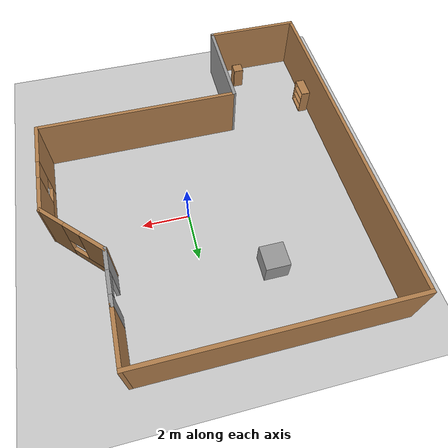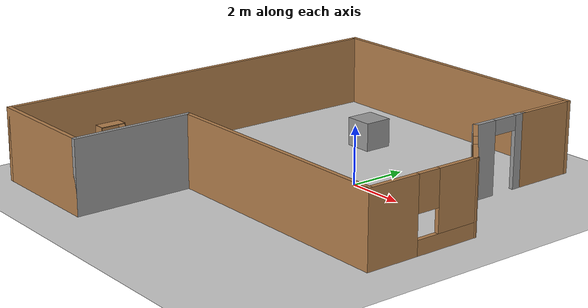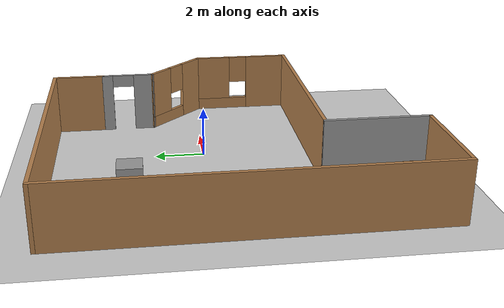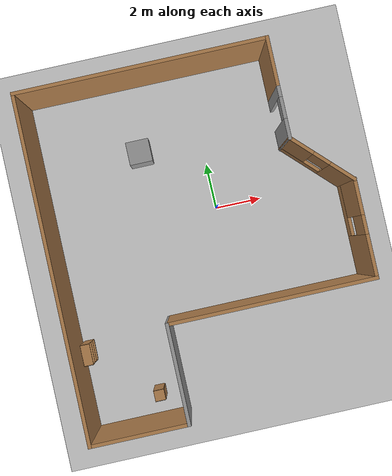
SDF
<sdf version="1.7">
 <world name="default">
  <light name="sun" type="directional">
   <pose>0 0 10 0 -0 0</pose>
   <diffuse>0.8 0.8 0.8 1</diffuse>
   <specular>0.2 0.2 0.2 1</specular>
   <attenuation>
    <range>1000</range>
    <constant>0.9</constant>
    <linear>0.01</linear>
    <quadratic>0.001</quadratic>
   </attenuation>
   <direction>-0.5 0.1 -0.9</direction>
   <spot><inner_angle>0</inner_angle><outer_angle>0</outer_angle><falloff>0</falloff></spot>
  </light>
  <model name="ground_plane">
   <static>1</static>
   <link name="link">
    <collision name="collision">
     <geometry><plane><normal>0 0 1</normal><size>100 100</size></plane></geometry>
     <surface><friction><ode><mu>100</mu><mu2>50</mu2></ode></friction></surface>
    </collision>
    <visual name="visual">
     <cast_shadows>0</cast_shadows>
     <geometry><plane><normal>0 0 1</normal><size>100 100</size></plane></geometry>
     <material>
      <script><uri>file://media/materials/scripts/gazebo.material</uri><name>Gazebo/Grey</name></script>
     </material>
    </visual>
   </link>
  </model>
  <gravity>0 0 -9.8</gravity>
  <magnetic_field>6e-06 2.3e-05 -4.2e-05</magnetic_field>
  <atmosphere type="adiabatic"/>
  <physics type="ode">
   <max_step_size>0.001</max_step_size>
   <real_time_factor>1</real_time_factor>
   <real_time_update_rate>1000</real_time_update_rate>
  </physics>
  <scene><ambient>0.4 0.4 0.4 1</ambient><background>0.7 0.7 0.7 1</background><shadows>1</shadows></scene>
  <audio><device>default</device></audio>
  <spherical_coordinates>
   <surface_model>EARTH_WGS84</surface_model>
   <latitude_deg>0</latitude_deg>
   <longitude_deg>0</longitude_deg>
   <elevation>0</elevation>
   <heading_deg>0</heading_deg>
  </spherical_coordinates>
  <model name="home">
   <pose>-0.794884 -1.13193 0 0 -0 0</pose>
   <link name="Wall_10">
    <collision name="Wall_10_Collision">
     <geometry><box><size>8.75 0.15 2.5</size></box></geometry>
     <pose>0 0 1.25 0 -0 0</pose>
    </collision>
    <visual name="Wall_10_Visual">
     <pose>0 0 1.25 0 -0 0</pose>
     <geometry><box><size>8.75 0.15 2.5</size></box></geometry>
     <material>
      <script><uri>file://media/materials/scripts/gazebo.material</uri><name>Gazebo/Wood</name></script>
      <ambient>1 1 1 1</ambient>
     </material>
     <meta><layer>0</layer></meta>
    </visual>
    <pose>2.08048 -3.19203 0 0 -0 0</pose>
   </link>
   <link name="Wall_11">
    <pose>6.38048 -1.14203 0 0 -0 1.5708</pose>
    <visual name="Wall_11_Visual_0">
     <pose>-1.18311 0 1.25 0 -0 0</pose>
     <geometry><box><size>1.88377 0.15 2.5</size></box></geometry>
     <material>
      <script><uri>file://media/materials/scripts/gazebo.material</uri><name>Gazebo/Wood</name></script>
      <ambient>1 1 1 1</ambient>
     </material>
     <meta><layer>0</layer></meta>
    </visual>
    <collision name="Wall_11_Collision_0">
     <geometry><box><size>1.88377 0.15 2.5</size></box></geometry>
     <pose>-1.18311 0 1.25 0 -0 0</pose>
    </collision>
    <visual name="Wall_11_Visual_1">
     <pose>0.941885 0 0.25 0 -0 0</pose>
     <geometry><box><size>2.36623 0.15 0.5</size></box></geometry>
     <material>
      <script><uri>file://media/materials/scripts/gazebo.material</uri><name>Gazebo/Wood</name></script>
      <ambient>1 1 1 1</ambient>
     </material>
     <meta><layer>0</layer></meta>
    </visual>
    <collision name="Wall_11_Collision_1">
     <geometry><box><size>2.36623 0.15 0.5</size></box></geometry>
     <pose>0.941885 0 0.25 0 -0 0</pose>
    </collision>
    <visual name="Wall_11_Visual_2">
     <pose>1.34188 0 1.5 0 -0 0</pose>
     <geometry><box><size>1.56623 0.15 2</size></box></geometry>
     <material>
      <script><uri>file://media/materials/scripts/gazebo.material</uri><name>Gazebo/Wood</name></script>
      <ambient>1 1 1 1</ambient>
     </material>
     <meta><layer>0</layer></meta>
    </visual>
    <collision name="Wall_11_Collision_2">
     <geometry><box><size>1.56623 0.15 2</size></box></geometry>
     <pose>1.34188 0 1.5 0 -0 0</pose>
    </collision>
    <visual name="Wall_11_Visual_3">
     <pose>0.15877 0 1.9 0 -0 0</pose>
     <geometry><box><size>0.8 0.15 1.2</size></box></geometry>
     <material>
      <script><uri>file://media/materials/scripts/gazebo.material</uri><name>Gazebo/Wood</name></script>
      <ambient>1 1 1 1</ambient>
     </material>
     <meta><layer>0</layer></meta>
    </visual>
    <collision name="Wall_11_Collision_3">
     <geometry><box><size>0.8 0.15 1.2</size></box></geometry>
     <pose>0.15877 0 1.9 0 -0 0</pose>
    </collision>
   </link>
   <link name="Wall_12">
    <pose>5.28447 2.00398 0 0 -0 2.35619</pose>
    <visual name="Wall_12_Visual_0">
     <pose>-1.00604 0 1.25 0 -0 0</pose>
     <geometry><box><size>1.23792 0.15 2.5</size></box></geometry>
     <material>
      <script><uri>file://media/materials/scripts/gazebo.material</uri><name>Gazebo/Wood</name></script>
      <ambient>1 1 1 1</ambient>
     </material>
     <meta><layer>0</layer></meta>
    </visual>
    <collision name="Wall_12_Collision_0">
     <geometry><box><size>1.23792 0.15 2.5</size></box></geometry>
     <pose>-1.00604 0 1.25 0 -0 0</pose>
    </collision>
    <visual name="Wall_12_Visual_1">
     <pose>0.618962 0 0.25 0 -0 0</pose>
     <geometry><box><size>2.01208 0.15 0.5</size></box></geometry>
     <material>
      <script><uri>file://media/materials/scripts/gazebo.material</uri><name>Gazebo/Wood</name></script>
      <ambient>1 1 1 1</ambient>
     </material>
     <meta><layer>0</layer></meta>
    </visual>
    <collision name="Wall_12_Collision_1">
     <geometry><box><size>2.01208 0.15 0.5</size></box></geometry>
     <pose>0.618962 0 0.25 0 -0 0</pose>
    </collision>
    <visual name="Wall_12_Visual_2">
     <pose>1.01896 0 1.5 0 -0 0</pose>
     <geometry><box><size>1.21208 0.15 2</size></box></geometry>
     <material>
      <script><uri>file://media/materials/scripts/gazebo.material</uri><name>Gazebo/Wood</name></script>
      <ambient>1 1 1 1</ambient>
     </material>
     <meta><layer>0</layer></meta>
    </visual>
    <collision name="Wall_12_Collision_2">
     <geometry><box><size>1.21208 0.15 2</size></box></geometry>
     <pose>1.01896 0 1.5 0 -0 0</pose>
    </collision>
    <visual name="Wall_12_Visual_3">
     <pose>0.012923 0 1.9 0 -0 0</pose>
     <geometry><box><size>0.8 0.15 1.2</size></box></geometry>
     <material>
      <script><uri>file://media/materials/scripts/gazebo.material</uri><name>Gazebo/Wood</name></script>
      <ambient>1 1 1 1</ambient>
     </material>
     <meta><layer>0</layer></meta>
    </visual>
    <collision name="Wall_12_Collision_3">
     <geometry><box><size>0.8 0.15 1.2</size></box></geometry>
     <pose>0.012923 0 1.9 0 -0 0</pose>
    </collision>
   </link>
   <link name="Wall_14">
    <pose>4.18845 4.15 0 0 -0 1.5708</pose>
    <visual name="Wall_14_Visual_0">
     <pose>-0.680545 0 1.25 0 -0 0</pose>
     <geometry><box><size>0.888911 0.15 2.5</size></box></geometry>
     <material>
      <script><uri>file://media/materials/scripts/gazebo.material</uri><name>Gazebo/Grey</name></script>
      <ambient>1 1 1 1</ambient>
     </material>
     <meta><layer>0</layer></meta>
    </visual>
    <collision name="Wall_14_Collision_0">
     <geometry><box><size>0.888911 0.15 2.5</size></box></geometry>
     <pose>-0.680545 0 1.25 0 -0 0</pose>
    </collision>
    <visual name="Wall_14_Visual_1">
     <pose>0.894455 0 1.25 0 -0 0</pose>
     <geometry><box><size>0.461089 0.15 2.5</size></box></geometry>
     <material>
      <script><uri>file://media/materials/scripts/gazebo.material</uri><name>Gazebo/Grey</name></script>
      <ambient>1 1 1 1</ambient>
     </material>
     <meta><layer>0</layer></meta>
    </visual>
    <collision name="Wall_14_Collision_1">
     <geometry><box><size>0.461089 0.15 2.5</size></box></geometry>
     <pose>0.894455 0 1.25 0 -0 0</pose>
    </collision>
    <visual name="Wall_14_Visual_2">
     <pose>0.213911 0 2.25 0 -0 0</pose>
     <geometry><box><size>0.9 0.15 0.5</size></box></geometry>
     <material>
      <script><uri>file://media/materials/scripts/gazebo.material</uri><name>Gazebo/Grey</name></script>
      <ambient>1 1 1 1</ambient>
     </material>
     <meta><layer>0</layer></meta>
    </visual>
    <collision name="Wall_14_Collision_2">
     <geometry><box><size>0.9 0.15 0.5</size></box></geometry>
     <pose>0.213911 0 2.25 0 -0 0</pose>
    </collision>
   </link>
   <link name="Wall_15">
    <collision name="Wall_15_Collision">
     <geometry><box><size>2.25 0.15 2.5</size></box></geometry>
     <pose>0 0 1.25 0 -0 0</pose>
    </collision>
    <visual name="Wall_15_Visual">
     <pose>0 0 1.25 0 -0 0</pose>
     <geometry><box><size>2.25 0.15 2.5</size></box></geometry>
     <material>
      <script><uri>file://media/materials/scripts/gazebo.material</uri><name>Gazebo/Wood</name></script>
      <ambient>1 1 1 1</ambient>
     </material>
     <meta><layer>0</layer></meta>
    </visual>
    <pose>4.18845 6.25 0 0 -0 1.5708</pose>
   </link>
   <link name="Wall_16">
    <collision name="Wall_16_Collision">
     <geometry><box><size>10.75 0.15 2.5</size></box></geometry>
     <pose>0 0 1.25 0 -0 0</pose>
    </collision>
    <visual name="Wall_16_Visual">
     <pose>0 0 1.25 0 -0 0</pose>
     <geometry><box><size>10.75 0.15 2.5</size></box></geometry>
     <material>
      <script><uri>file://media/materials/scripts/gazebo.material</uri><name>Gazebo/Wood</name></script>
      <ambient>1 1 1 1</ambient>
     </material>
     <meta><layer>0</layer></meta>
    </visual>
    <pose>-1.11155 7.3 0 0 -0 3.14159</pose>
   </link>
   <link name="Wall_17">
    <collision name="Wall_17_Collision">
     <geometry><box><size>14.75 0.15 2.5</size></box></geometry>
     <pose>0 0 1.25 0 -0 0</pose>
    </collision>
    <visual name="Wall_17_Visual">
     <pose>0 0 1.25 0 -0 0</pose>
     <geometry><box><size>14.75 0.15 2.5</size></box></geometry>
     <material>
      <script><uri>file://media/materials/scripts/gazebo.material</uri><name>Gazebo/Wood</name></script>
      <ambient>1 1 1 1</ambient>
     </material>
     <meta><layer>0</layer></meta>
    </visual>
    <pose>-6.41155 -0 0 0 -0 -1.5708</pose>
   </link>
   <link name="Wall_18">
    <collision name="Wall_18_Collision">
     <geometry><box><size>4.25 0.15 2.5</size></box></geometry>
     <pose>0 0 1.25 0 -0 0</pose>
    </collision>
    <visual name="Wall_18_Visual">
     <pose>0 0 1.25 0 -0 0</pose>
     <geometry><box><size>4.25 0.15 2.5</size></box></geometry>
     <material>
      <script><uri>file://media/materials/scripts/gazebo.material</uri><name>Gazebo/Wood</name></script>
      <ambient>1 1 1 1</ambient>
     </material>
     <meta><layer>0</layer></meta>
    </visual>
    <pose>-4.36155 -7.3 0 0 -0 0</pose>
   </link>
   <link name="Wall_19">
    <collision name="Wall_19_Collision">
     <geometry><box><size>4.25 0.15 2.5</size></box></geometry>
     <pose>0 0 1.25 0 -0 0</pose>
    </collision>
    <visual name="Wall_19_Visual">
     <pose>0 0 1.25 0 -0 0</pose>
     <geometry><box><size>4.25 0.15 2.5</size></box></geometry>
     <material>
      <script><uri>file://media/materials/scripts/gazebo.material</uri><name>Gazebo/Grey</name></script>
      <ambient>1 1 1 1</ambient>
     </material>
     <meta><layer>0</layer></meta>
    </visual>
    <pose>-2.31155 -5.25 0 0 -0 1.5708</pose>
   </link>
   <static>1</static>
  </model>
  <model name="bookshelf">
   <static>1</static>
   <link name="link">
    <inertial><mass>1</mass></inertial>
    <collision name="back">
     <pose>0 0.005 0.6 0 -0 0</pose>
     <geometry><box><size>0.9 0.01 1.2</size></box></geometry>
    </collision>
    <visual name="visual1">
     <pose>0 0.005 0.6 0 -0 0</pose>
     <geometry><box><size>0.9 0.01 1.2</size></box></geometry>
     <material>
      <script><uri>file://media/materials/scripts/gazebo.material</uri><name>Gazebo/Wood</name></script>
     </material>
    </visual>
    <collision name="left_side">
     <pose>0.45 -0.195 0.6 0 -0 0</pose>
     <geometry><box><size>0.02 0.4 1.2</size></box></geometry>
    </collision>
    <visual name="visual2">
     <pose>0.45 -0.195 0.6 0 -0 0</pose>
     <geometry><box><size>0.02 0.4 1.2</size></box></geometry>
     <material>
      <script><uri>file://media/materials/scripts/gazebo.material</uri><name>Gazebo/Wood</name></script>
     </material>
    </visual>
    <collision name="right_side">
     <pose>-0.45 -0.195 0.6 0 -0 0</pose>
     <geometry><box><size>0.02 0.4 1.2</size></box></geometry>
    </collision>
    <visual name="visual3">
     <pose>-0.45 -0.195 0.6 0 -0 0</pose>
     <geometry><box><size>0.02 0.4 1.2</size></box></geometry>
     <material>
      <script><uri>file://media/materials/scripts/gazebo.material</uri><name>Gazebo/Wood</name></script>
     </material>
    </visual>
    <collision name="bottom">
     <pose>0 -0.195 0.03 0 -0 0</pose>
     <geometry><box><size>0.88 0.4 0.06</size></box></geometry>
    </collision>
    <visual name="visual4">
     <pose>0 -0.195 0.03 0 -0 0</pose>
     <geometry><box><size>0.88 0.4 0.06</size></box></geometry>
     <material>
      <script><uri>file://media/materials/scripts/gazebo.material</uri><name>Gazebo/Wood</name></script>
     </material>
    </visual>
    <collision name="top">
     <pose>0 -0.195 1.19 0 -0 0</pose>
     <geometry><box><size>0.88 0.4 0.02</size></box></geometry>
    </collision>
    <visual name="visual5">
     <pose>0 -0.195 1.19 0 -0 0</pose>
     <geometry><box><size>0.88 0.4 0.02</size></box></geometry>
     <material>
      <script><uri>file://media/materials/scripts/gazebo.material</uri><name>Gazebo/Wood</name></script>
     </material>
    </visual>
    <collision name="low_shelf">
     <pose>0 -0.195 0.43 0 -0 0</pose>
     <geometry><box><size>0.88 0.4 0.02</size></box></geometry>
    </collision>
    <visual name="visual6">
     <pose>0 -0.195 0.43 0 -0 0</pose>
     <geometry><box><size>0.88 0.4 0.02</size></box></geometry>
     <material>
      <script><uri>file://media/materials/scripts/gazebo.material</uri><name>Gazebo/Wood</name></script>
     </material>
    </visual>
    <collision name="high_shelf">
     <pose>0 -0.195 0.8 0 -0 0</pose>
     <geometry><box><size>0.88 0.4 0.02</size></box></geometry>
    </collision>
    <visual name="visual7">
     <pose>0 -0.195 0.8 0 -0 0</pose>
     <geometry><box><size>0.88 0.4 0.02</size></box></geometry>
     <material>
      <script><uri>file://media/materials/scripts/gazebo.material</uri><name>Gazebo/Wood</name></script>
     </material>
    </visual>
   </link>
   <pose>-6.9833 -4.97102 0.158689 0 -0 1.56259</pose>
  </model>
  <model name="cabinet">
   <static>1</static>
   <link name="cabinet_bottom_plate">
    <inertial>
     <pose>0 0 -1 0 -0 0</pose>
     <inertia><ixx>2.05</ixx><ixy>0</ixy><ixz>0</ixz><iyy>2.05</iyy><iyz>0</iyz><izz>2.05</izz></inertia>
     <mass>25</mass>
    </inertial>
    <collision name="cabinet_bottom_plate_geom">
     <pose>0 0 0.01 0 -0 0</pose>
     <geometry><box><size>0.45 0.45 0.02</size></box></geometry>
    </collision>
    <visual name="cabinet_bottom_plate_geom_visual">
     <pose>0 0 0.01 0 -0 0</pose>
     <geometry><box><size>0.45 0.45 0.02</size></box></geometry>
     <material>
      <script><uri>file://media/materials/scripts/gazebo.material</uri><name>Gazebo/Wood</name></script>
     </material>
    </visual>
    <collision name="cabinet_bottom_plate_geom_cabinet_back_plate">
     <pose>0.235 0 0.51 0 -0 0</pose>
     <geometry><box><size>0.02 0.45 1.02</size></box></geometry>
    </collision>
    <visual name="cabinet_bottom_plate_geom_cabinet_back_plate_visual">
     <pose>0.235 0 0.51 0 -0 0</pose>
     <geometry><box><size>0.02 0.45 1.02</size></box></geometry>
     <material>
      <script><uri>file://media/materials/scripts/gazebo.material</uri><name>Gazebo/Wood</name></script>
     </material>
    </visual>
    <collision name="cabinet_bottom_plate_geom_cabinet_left_plate">
     <pose>0 0.235 0.51 0 -0 0</pose>
     <geometry><box><size>0.45 0.02 1.02</size></box></geometry>
    </collision>
    <visual name="cabinet_bottom_plate_geom_cabinet_left_plate_visual">
     <pose>0 0.235 0.51 0 -0 0</pose>
     <geometry><box><size>0.45 0.02 1.02</size></box></geometry>
     <material>
      <script><uri>file://media/materials/scripts/gazebo.material</uri><name>Gazebo/Wood</name></script>
     </material>
    </visual>
    <collision name="cabinet_bottom_plate_geom_cabinet_middle_plate">
     <pose>0 0 0.51 0 -0 0</pose>
     <geometry><box><size>0.45 0.45 0.02</size></box></geometry>
    </collision>
    <visual name="cabinet_bottom_plate_geom_cabinet_middle_plate_visual">
     <pose>0 0 0.51 0 -0 0</pose>
     <geometry><box><size>0.45 0.45 0.02</size></box></geometry>
     <material>
      <script><uri>file://media/materials/scripts/gazebo.material</uri><name>Gazebo/Wood</name></script>
     </material>
    </visual>
    <collision name="cabinet_bottom_plate_geom_cabinet_right_plate">
     <pose>0 -0.235 0.51 0 -0 0</pose>
     <geometry><box><size>0.45 0.02 1.02</size></box></geometry>
    </collision>
    <visual name="cabinet_bottom_plate_geom_cabinet_right_plate_visual">
     <pose>0 -0.235 0.51 0 -0 0</pose>
     <geometry><box><size>0.45 0.02 1.02</size></box></geometry>
     <material>
      <script><uri>file://media/materials/scripts/gazebo.material</uri><name>Gazebo/Wood</name></script>
     </material>
    </visual>
    <collision name="cabinet_bottom_plate_geom_cabinet_top_plate">
     <pose>0 0 1.01 0 -0 0</pose>
     <geometry><box><size>0.45 0.45 0.02</size></box></geometry>
    </collision>
    <visual name="cabinet_bottom_plate_geom_cabinet_top_plate_visual">
     <pose>0 0 1.01 0 -0 0</pose>
     <geometry><box><size>0.45 0.45 0.02</size></box></geometry>
     <material>
      <script><uri>file://media/materials/scripts/gazebo.material</uri><name>Gazebo/Wood</name></script>
     </material>
    </visual>
   </link>
   <pose>-4.18309 -7.37653 0 0 -0 0</pose>
  </model>
  <model name="unit_box">
   <pose>-2.78681 3.0416 0.499995 -1e-05 -0 -0</pose>
   <link name="link">
    <inertial>
     <mass>1</mass>
     <inertia>
      <ixx>0.166667</ixx>
      <ixy>0</ixy>
      <ixz>0</ixz>
      <iyy>0.166667</iyy>
      <iyz>0</iyz>
      <izz>0.166667</izz>
     </inertia>
    </inertial>
    <collision name="collision"><geometry><box><size>1 1 1</size></box></geometry></collision>
    <visual name="visual">
     <geometry><box><size>1 1 1</size></box></geometry>
     <material>
      <script><name>Gazebo/Grey</name><uri>file://media/materials/scripts/gazebo.material</uri></script>
     </material>
    </visual>
   </link>
  </model>
 </world>
</sdf>
